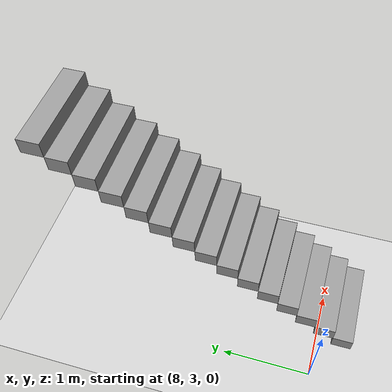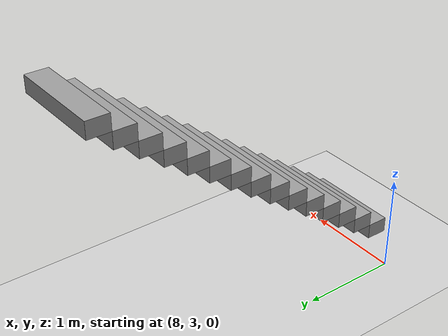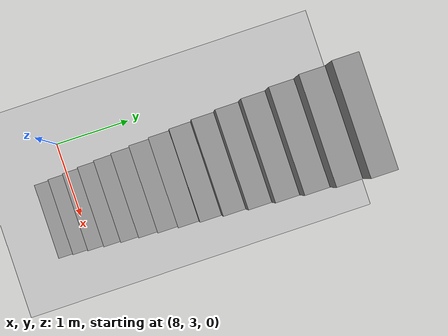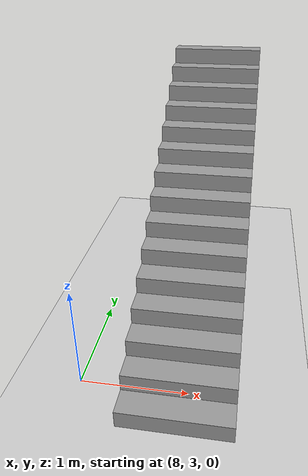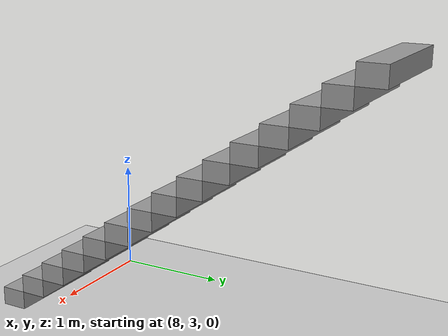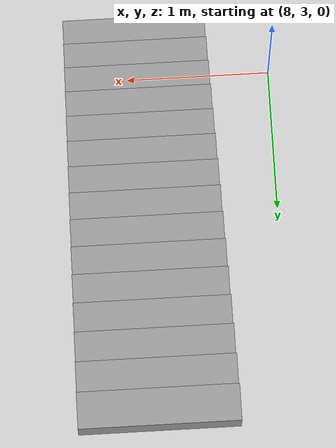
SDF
<sdf version="1.6">
 <world name="default">
  <model name="ground_plane">
   <static>1</static>
   <link name="link">
    <collision name="collision">
     <geometry><plane><normal>0 0 1</normal><size>100 100</size></plane></geometry>
     <surface><friction><ode><mu>100</mu><mu2>50</mu2></ode></friction></surface>
    </collision>
    <visual name="visual">
     <cast_shadows>0</cast_shadows>
     <geometry><plane><normal>0 0 1</normal><size>100 100</size></plane></geometry>
     <material>
      <script><uri>file://media/materials/scripts/gazebo.material</uri><name>Gazebo/Grey</name></script>
     </material>
    </visual>
   </link>
  </model>
  <model name="Building">
   <link name="Stairs_0">
    <visual name="Stairs_0_Visual_0">
     <pose>7.53348 2.95514 0.083333 0 0 -3.14159</pose>
     <geometry><box><size>1 0.231704 0.166667</size></box></geometry>
     <material>
      <script><uri>file://media/materials/scripts/gazebo.material</uri><name>Gazebo/Grey</name></script>
      <ambient>1 1 1 1</ambient>
      <shader type="pixel"/>
      <diffuse>0.7 0.7 0.7 1</diffuse>
      <specular>0.01 0.01 0.01 1</specular>
      <emissive>0 0 0 1</emissive>
     </material>
     <meta><layer>0</layer></meta>
    </visual>
    <visual name="Stairs_0_Visual_1">
     <pose>7.53348 3.18685 0.25 0 0 -3.14159</pose>
     <geometry><box><size>1 0.231704 0.166667</size></box></geometry>
     <material>
      <script><uri>file://media/materials/scripts/gazebo.material</uri><name>Gazebo/Grey</name></script>
      <ambient>1 1 1 1</ambient>
      <shader type="pixel"/>
      <diffuse>0.7 0.7 0.7 1</diffuse>
      <specular>0.01 0.01 0.01 1</specular>
      <emissive>0 0 0 1</emissive>
     </material>
     <meta><layer>0</layer></meta>
    </visual>
    <visual name="Stairs_0_Visual_2">
     <pose>7.53348 3.41855 0.416667 0 0 -3.14159</pose>
     <geometry><box><size>1 0.231704 0.166667</size></box></geometry>
     <material>
      <script><uri>file://media/materials/scripts/gazebo.material</uri><name>Gazebo/Grey</name></script>
      <ambient>1 1 1 1</ambient>
      <shader type="pixel"/>
      <diffuse>0.7 0.7 0.7 1</diffuse>
      <specular>0.01 0.01 0.01 1</specular>
      <emissive>0 0 0 1</emissive>
     </material>
     <meta><layer>0</layer></meta>
    </visual>
    <visual name="Stairs_0_Visual_3">
     <pose>7.53348 3.65026 0.583333 0 0 -3.14159</pose>
     <geometry><box><size>1 0.231704 0.166667</size></box></geometry>
     <material>
      <script><uri>file://media/materials/scripts/gazebo.material</uri><name>Gazebo/Grey</name></script>
      <ambient>1 1 1 1</ambient>
      <shader type="pixel"/>
      <diffuse>0.7 0.7 0.7 1</diffuse>
      <specular>0.01 0.01 0.01 1</specular>
      <emissive>0 0 0 1</emissive>
     </material>
     <meta><layer>0</layer></meta>
    </visual>
    <visual name="Stairs_0_Visual_4">
     <pose>7.53348 3.88196 0.75 0 0 -3.14159</pose>
     <geometry><box><size>1 0.231704 0.166667</size></box></geometry>
     <material>
      <script><uri>file://media/materials/scripts/gazebo.material</uri><name>Gazebo/Grey</name></script>
      <ambient>1 1 1 1</ambient>
      <shader type="pixel"/>
      <diffuse>0.7 0.7 0.7 1</diffuse>
      <specular>0.01 0.01 0.01 1</specular>
      <emissive>0 0 0 1</emissive>
     </material>
     <meta><layer>0</layer></meta>
    </visual>
    <visual name="Stairs_0_Visual_5">
     <pose>7.53348 4.11367 0.916667 0 0 -3.14159</pose>
     <geometry><box><size>1 0.231704 0.166667</size></box></geometry>
     <material>
      <script><uri>file://media/materials/scripts/gazebo.material</uri><name>Gazebo/Grey</name></script>
      <ambient>1 1 1 1</ambient>
      <shader type="pixel"/>
      <diffuse>0.7 0.7 0.7 1</diffuse>
      <specular>0.01 0.01 0.01 1</specular>
      <emissive>0 0 0 1</emissive>
     </material>
     <meta><layer>0</layer></meta>
    </visual>
    <visual name="Stairs_0_Visual_6">
     <pose>7.53348 4.34537 1.08333 0 0 -3.14159</pose>
     <geometry><box><size>1 0.231704 0.166667</size></box></geometry>
     <material>
      <script><uri>file://media/materials/scripts/gazebo.material</uri><name>Gazebo/Grey</name></script>
      <ambient>1 1 1 1</ambient>
      <shader type="pixel"/>
      <diffuse>0.7 0.7 0.7 1</diffuse>
      <specular>0.01 0.01 0.01 1</specular>
      <emissive>0 0 0 1</emissive>
     </material>
     <meta><layer>0</layer></meta>
    </visual>
    <visual name="Stairs_0_Visual_7">
     <pose>7.53348 4.57708 1.25 0 0 -3.14159</pose>
     <geometry><box><size>1 0.231704 0.166667</size></box></geometry>
     <material>
      <script><uri>file://media/materials/scripts/gazebo.material</uri><name>Gazebo/Grey</name></script>
      <ambient>1 1 1 1</ambient>
      <shader type="pixel"/>
      <diffuse>0.7 0.7 0.7 1</diffuse>
      <specular>0.01 0.01 0.01 1</specular>
      <emissive>0 0 0 1</emissive>
     </material>
     <meta><layer>0</layer></meta>
    </visual>
    <visual name="Stairs_0_Visual_8">
     <pose>7.53348 4.80878 1.41667 0 0 -3.14159</pose>
     <geometry><box><size>1 0.231704 0.166667</size></box></geometry>
     <material>
      <script><uri>file://media/materials/scripts/gazebo.material</uri><name>Gazebo/Grey</name></script>
      <ambient>1 1 1 1</ambient>
      <shader type="pixel"/>
      <diffuse>0.7 0.7 0.7 1</diffuse>
      <specular>0.01 0.01 0.01 1</specular>
      <emissive>0 0 0 1</emissive>
     </material>
     <meta><layer>0</layer></meta>
    </visual>
    <visual name="Stairs_0_Visual_9">
     <pose>7.53348 5.04049 1.58333 0 0 -3.14159</pose>
     <geometry><box><size>1 0.231704 0.166667</size></box></geometry>
     <material>
      <script><uri>file://media/materials/scripts/gazebo.material</uri><name>Gazebo/Grey</name></script>
      <ambient>1 1 1 1</ambient>
      <shader type="pixel"/>
      <diffuse>0.7 0.7 0.7 1</diffuse>
      <specular>0.01 0.01 0.01 1</specular>
      <emissive>0 0 0 1</emissive>
     </material>
     <meta><layer>0</layer></meta>
    </visual>
    <visual name="Stairs_0_Visual_10">
     <pose>7.53348 5.27219 1.75 0 0 -3.14159</pose>
     <geometry><box><size>1 0.231704 0.166667</size></box></geometry>
     <material>
      <script><uri>file://media/materials/scripts/gazebo.material</uri><name>Gazebo/Grey</name></script>
      <ambient>1 1 1 1</ambient>
      <shader type="pixel"/>
      <diffuse>0.7 0.7 0.7 1</diffuse>
      <specular>0.01 0.01 0.01 1</specular>
      <emissive>0 0 0 1</emissive>
     </material>
     <meta><layer>0</layer></meta>
    </visual>
    <visual name="Stairs_0_Visual_11">
     <pose>7.53348 5.50389 1.91667 0 0 -3.14159</pose>
     <geometry><box><size>1 0.231704 0.166667</size></box></geometry>
     <material>
      <script><uri>file://media/materials/scripts/gazebo.material</uri><name>Gazebo/Grey</name></script>
      <ambient>1 1 1 1</ambient>
      <shader type="pixel"/>
      <diffuse>0.7 0.7 0.7 1</diffuse>
      <specular>0.01 0.01 0.01 1</specular>
      <emissive>0 0 0 1</emissive>
     </material>
     <meta><layer>0</layer></meta>
    </visual>
    <visual name="Stairs_0_Visual_12">
     <pose>7.53348 5.7356 2.08333 0 0 -3.14159</pose>
     <geometry><box><size>1 0.231704 0.166667</size></box></geometry>
     <material>
      <script><uri>file://media/materials/scripts/gazebo.material</uri><name>Gazebo/Grey</name></script>
      <ambient>1 1 1 1</ambient>
      <shader type="pixel"/>
      <diffuse>0.7 0.7 0.7 1</diffuse>
      <specular>0.01 0.01 0.01 1</specular>
      <emissive>0 0 0 1</emissive>
     </material>
     <meta><layer>0</layer></meta>
    </visual>
    <visual name="Stairs_0_Visual_13">
     <pose>7.53348 5.9673 2.25 0 0 -3.14159</pose>
     <geometry><box><size>1 0.231704 0.166667</size></box></geometry>
     <material>
      <script><uri>file://media/materials/scripts/gazebo.material</uri><name>Gazebo/Grey</name></script>
      <ambient>1 1 1 1</ambient>
      <shader type="pixel"/>
      <diffuse>0.7 0.7 0.7 1</diffuse>
      <specular>0.01 0.01 0.01 1</specular>
      <emissive>0 0 0 1</emissive>
     </material>
     <meta><layer>0</layer></meta>
    </visual>
    <visual name="Stairs_0_Visual_14">
     <pose>7.53348 6.19901 2.41667 0 0 -3.14159</pose>
     <geometry><box><size>1 0.231704 0.166667</size></box></geometry>
     <material>
      <script><uri>file://media/materials/scripts/gazebo.material</uri><name>Gazebo/Grey</name></script>
      <ambient>1 1 1 1</ambient>
      <shader type="pixel"/>
      <diffuse>0.7 0.7 0.7 1</diffuse>
      <specular>0.01 0.01 0.01 1</specular>
      <emissive>0 0 0 1</emissive>
     </material>
     <meta><layer>0</layer></meta>
    </visual>
    <collision name="Stairs_0_Collision_6">
     <pose>7.53348 4.34537 1.08333 0 0 -3.14159</pose>
     <geometry><box><size>1 0.231704 0.166667</size></box></geometry>
     <surface>
      <friction>
       <ode><mu>1</mu><mu2>1</mu2><fdir1>0 0 0</fdir1><slip1>0</slip1><slip2>0</slip2></ode>
       <torsional>
        <coefficient>1</coefficient>
        <patch_radius>0</patch_radius>
        <surface_radius>0</surface_radius>
        <use_patch_radius>1</use_patch_radius>
        <ode><slip>0</slip></ode>
       </torsional>
      </friction>
      <bounce><restitution_coefficient>0</restitution_coefficient><threshold>1e+06</threshold></bounce>
      <contact>
       <collide_without_contact>0</collide_without_contact>
       <collide_without_contact_bitmask>1</collide_without_contact_bitmask>
       <collide_bitmask>1</collide_bitmask>
       <ode>
        <soft_cfm>0</soft_cfm>
        <soft_erp>0.2</soft_erp>
        <kp>1e+13</kp>
        <kd>1</kd>
        <max_vel>0.01</max_vel>
        <min_depth>0</min_depth>
       </ode>
       <bullet>
        <split_impulse>1</split_impulse>
        <split_impulse_penetration_threshold>-0.01</split_impulse_penetration_threshold>
        <soft_cfm>0</soft_cfm>
        <soft_erp>0.2</soft_erp>
        <kp>1e+13</kp>
        <kd>1</kd>
       </bullet>
      </contact>
     </surface>
    </collision>
    <collision name="Stairs_0_Collision_0">
     <pose>7.53348 2.95514 0.083333 0 0 -3.14159</pose>
     <geometry><box><size>1 0.231704 0.166667</size></box></geometry>
     <surface>
      <friction>
       <ode><mu>1</mu><mu2>1</mu2><fdir1>0 0 0</fdir1><slip1>0</slip1><slip2>0</slip2></ode>
       <torsional>
        <coefficient>1</coefficient>
        <patch_radius>0</patch_radius>
        <surface_radius>0</surface_radius>
        <use_patch_radius>1</use_patch_radius>
        <ode><slip>0</slip></ode>
       </torsional>
      </friction>
      <bounce><restitution_coefficient>0</restitution_coefficient><threshold>1e+06</threshold></bounce>
      <contact>
       <collide_without_contact>0</collide_without_contact>
       <collide_without_contact_bitmask>1</collide_without_contact_bitmask>
       <collide_bitmask>1</collide_bitmask>
       <ode>
        <soft_cfm>0</soft_cfm>
        <soft_erp>0.2</soft_erp>
        <kp>1e+13</kp>
        <kd>1</kd>
        <max_vel>0.01</max_vel>
        <min_depth>0</min_depth>
       </ode>
       <bullet>
        <split_impulse>1</split_impulse>
        <split_impulse_penetration_threshold>-0.01</split_impulse_penetration_threshold>
        <soft_cfm>0</soft_cfm>
        <soft_erp>0.2</soft_erp>
        <kp>1e+13</kp>
        <kd>1</kd>
       </bullet>
      </contact>
     </surface>
    </collision>
    <collision name="Stairs_0_Collision_2">
     <pose>7.53348 3.41855 0.416667 0 0 -3.14159</pose>
     <geometry><box><size>1 0.231704 0.166667</size></box></geometry>
     <surface>
      <friction>
       <ode><mu>1</mu><mu2>1</mu2><fdir1>0 0 0</fdir1><slip1>0</slip1><slip2>0</slip2></ode>
       <torsional>
        <coefficient>1</coefficient>
        <patch_radius>0</patch_radius>
        <surface_radius>0</surface_radius>
        <use_patch_radius>1</use_patch_radius>
        <ode><slip>0</slip></ode>
       </torsional>
      </friction>
      <bounce><restitution_coefficient>0</restitution_coefficient><threshold>1e+06</threshold></bounce>
      <contact>
       <collide_without_contact>0</collide_without_contact>
       <collide_without_contact_bitmask>1</collide_without_contact_bitmask>
       <collide_bitmask>1</collide_bitmask>
       <ode>
        <soft_cfm>0</soft_cfm>
        <soft_erp>0.2</soft_erp>
        <kp>1e+13</kp>
        <kd>1</kd>
        <max_vel>0.01</max_vel>
        <min_depth>0</min_depth>
       </ode>
       <bullet>
        <split_impulse>1</split_impulse>
        <split_impulse_penetration_threshold>-0.01</split_impulse_penetration_threshold>
        <soft_cfm>0</soft_cfm>
        <soft_erp>0.2</soft_erp>
        <kp>1e+13</kp>
        <kd>1</kd>
       </bullet>
      </contact>
     </surface>
    </collision>
    <collision name="Stairs_0_Collision_1">
     <pose>7.53348 3.18685 0.25 0 0 -3.14159</pose>
     <geometry><box><size>1 0.231704 0.166667</size></box></geometry>
     <surface>
      <friction>
       <ode><mu>1</mu><mu2>1</mu2><fdir1>0 0 0</fdir1><slip1>0</slip1><slip2>0</slip2></ode>
       <torsional>
        <coefficient>1</coefficient>
        <patch_radius>0</patch_radius>
        <surface_radius>0</surface_radius>
        <use_patch_radius>1</use_patch_radius>
        <ode><slip>0</slip></ode>
       </torsional>
      </friction>
      <bounce><restitution_coefficient>0</restitution_coefficient><threshold>1e+06</threshold></bounce>
      <contact>
       <collide_without_contact>0</collide_without_contact>
       <collide_without_contact_bitmask>1</collide_without_contact_bitmask>
       <collide_bitmask>1</collide_bitmask>
       <ode>
        <soft_cfm>0</soft_cfm>
        <soft_erp>0.2</soft_erp>
        <kp>1e+13</kp>
        <kd>1</kd>
        <max_vel>0.01</max_vel>
        <min_depth>0</min_depth>
       </ode>
       <bullet>
        <split_impulse>1</split_impulse>
        <split_impulse_penetration_threshold>-0.01</split_impulse_penetration_threshold>
        <soft_cfm>0</soft_cfm>
        <soft_erp>0.2</soft_erp>
        <kp>1e+13</kp>
        <kd>1</kd>
       </bullet>
      </contact>
     </surface>
    </collision>
    <collision name="Stairs_0_Collision_4">
     <pose>7.53348 3.88196 0.75 0 0 -3.14159</pose>
     <geometry><box><size>1 0.231704 0.166667</size></box></geometry>
     <surface>
      <friction>
       <ode><mu>1</mu><mu2>1</mu2><fdir1>0 0 0</fdir1><slip1>0</slip1><slip2>0</slip2></ode>
       <torsional>
        <coefficient>1</coefficient>
        <patch_radius>0</patch_radius>
        <surface_radius>0</surface_radius>
        <use_patch_radius>1</use_patch_radius>
        <ode><slip>0</slip></ode>
       </torsional>
      </friction>
      <bounce><restitution_coefficient>0</restitution_coefficient><threshold>1e+06</threshold></bounce>
      <contact>
       <collide_without_contact>0</collide_without_contact>
       <collide_without_contact_bitmask>1</collide_without_contact_bitmask>
       <collide_bitmask>1</collide_bitmask>
       <ode>
        <soft_cfm>0</soft_cfm>
        <soft_erp>0.2</soft_erp>
        <kp>1e+13</kp>
        <kd>1</kd>
        <max_vel>0.01</max_vel>
        <min_depth>0</min_depth>
       </ode>
       <bullet>
        <split_impulse>1</split_impulse>
        <split_impulse_penetration_threshold>-0.01</split_impulse_penetration_threshold>
        <soft_cfm>0</soft_cfm>
        <soft_erp>0.2</soft_erp>
        <kp>1e+13</kp>
        <kd>1</kd>
       </bullet>
      </contact>
     </surface>
    </collision>
    <collision name="Stairs_0_Collision_3">
     <pose>7.53348 3.65026 0.583333 0 0 -3.14159</pose>
     <geometry><box><size>1 0.231704 0.166667</size></box></geometry>
     <surface>
      <friction>
       <ode><mu>1</mu><mu2>1</mu2><fdir1>0 0 0</fdir1><slip1>0</slip1><slip2>0</slip2></ode>
       <torsional>
        <coefficient>1</coefficient>
        <patch_radius>0</patch_radius>
        <surface_radius>0</surface_radius>
        <use_patch_radius>1</use_patch_radius>
        <ode><slip>0</slip></ode>
       </torsional>
      </friction>
      <bounce><restitution_coefficient>0</restitution_coefficient><threshold>1e+06</threshold></bounce>
      <contact>
       <collide_without_contact>0</collide_without_contact>
       <collide_without_contact_bitmask>1</collide_without_contact_bitmask>
       <collide_bitmask>1</collide_bitmask>
       <ode>
        <soft_cfm>0</soft_cfm>
        <soft_erp>0.2</soft_erp>
        <kp>1e+13</kp>
        <kd>1</kd>
        <max_vel>0.01</max_vel>
        <min_depth>0</min_depth>
       </ode>
       <bullet>
        <split_impulse>1</split_impulse>
        <split_impulse_penetration_threshold>-0.01</split_impulse_penetration_threshold>
        <soft_cfm>0</soft_cfm>
        <soft_erp>0.2</soft_erp>
        <kp>1e+13</kp>
        <kd>1</kd>
       </bullet>
      </contact>
     </surface>
    </collision>
    <collision name="Stairs_0_Collision_5">
     <pose>7.53348 4.11367 0.916667 0 0 -3.14159</pose>
     <geometry><box><size>1 0.231704 0.166667</size></box></geometry>
     <surface>
      <friction>
       <ode><mu>1</mu><mu2>1</mu2><fdir1>0 0 0</fdir1><slip1>0</slip1><slip2>0</slip2></ode>
       <torsional>
        <coefficient>1</coefficient>
        <patch_radius>0</patch_radius>
        <surface_radius>0</surface_radius>
        <use_patch_radius>1</use_patch_radius>
        <ode><slip>0</slip></ode>
       </torsional>
      </friction>
      <bounce><restitution_coefficient>0</restitution_coefficient><threshold>1e+06</threshold></bounce>
      <contact>
       <collide_without_contact>0</collide_without_contact>
       <collide_without_contact_bitmask>1</collide_without_contact_bitmask>
       <collide_bitmask>1</collide_bitmask>
       <ode>
        <soft_cfm>0</soft_cfm>
        <soft_erp>0.2</soft_erp>
        <kp>1e+13</kp>
        <kd>1</kd>
        <max_vel>0.01</max_vel>
        <min_depth>0</min_depth>
       </ode>
       <bullet>
        <split_impulse>1</split_impulse>
        <split_impulse_penetration_threshold>-0.01</split_impulse_penetration_threshold>
        <soft_cfm>0</soft_cfm>
        <soft_erp>0.2</soft_erp>
        <kp>1e+13</kp>
        <kd>1</kd>
       </bullet>
      </contact>
     </surface>
    </collision>
    <collision name="Stairs_0_Collision_8">
     <pose>7.53348 4.80878 1.41667 0 0 -3.14159</pose>
     <geometry><box><size>1 0.231704 0.166667</size></box></geometry>
     <surface>
      <friction>
       <ode><mu>1</mu><mu2>1</mu2><fdir1>0 0 0</fdir1><slip1>0</slip1><slip2>0</slip2></ode>
       <torsional>
        <coefficient>1</coefficient>
        <patch_radius>0</patch_radius>
        <surface_radius>0</surface_radius>
        <use_patch_radius>1</use_patch_radius>
        <ode><slip>0</slip></ode>
       </torsional>
      </friction>
      <bounce><restitution_coefficient>0</restitution_coefficient><threshold>1e+06</threshold></bounce>
      <contact>
       <collide_without_contact>0</collide_without_contact>
       <collide_without_contact_bitmask>1</collide_without_contact_bitmask>
       <collide_bitmask>1</collide_bitmask>
       <ode>
        <soft_cfm>0</soft_cfm>
        <soft_erp>0.2</soft_erp>
        <kp>1e+13</kp>
        <kd>1</kd>
        <max_vel>0.01</max_vel>
        <min_depth>0</min_depth>
       </ode>
       <bullet>
        <split_impulse>1</split_impulse>
        <split_impulse_penetration_threshold>-0.01</split_impulse_penetration_threshold>
        <soft_cfm>0</soft_cfm>
        <soft_erp>0.2</soft_erp>
        <kp>1e+13</kp>
        <kd>1</kd>
       </bullet>
      </contact>
     </surface>
    </collision>
    <collision name="Stairs_0_Collision_7">
     <pose>7.53348 4.57708 1.25 0 0 -3.14159</pose>
     <geometry><box><size>1 0.231704 0.166667</size></box></geometry>
     <surface>
      <friction>
       <ode><mu>1</mu><mu2>1</mu2><fdir1>0 0 0</fdir1><slip1>0</slip1><slip2>0</slip2></ode>
       <torsional>
        <coefficient>1</coefficient>
        <patch_radius>0</patch_radius>
        <surface_radius>0</surface_radius>
        <use_patch_radius>1</use_patch_radius>
        <ode><slip>0</slip></ode>
       </torsional>
      </friction>
      <bounce><restitution_coefficient>0</restitution_coefficient><threshold>1e+06</threshold></bounce>
      <contact>
       <collide_without_contact>0</collide_without_contact>
       <collide_without_contact_bitmask>1</collide_without_contact_bitmask>
       <collide_bitmask>1</collide_bitmask>
       <ode>
        <soft_cfm>0</soft_cfm>
        <soft_erp>0.2</soft_erp>
        <kp>1e+13</kp>
        <kd>1</kd>
        <max_vel>0.01</max_vel>
        <min_depth>0</min_depth>
       </ode>
       <bullet>
        <split_impulse>1</split_impulse>
        <split_impulse_penetration_threshold>-0.01</split_impulse_penetration_threshold>
        <soft_cfm>0</soft_cfm>
        <soft_erp>0.2</soft_erp>
        <kp>1e+13</kp>
        <kd>1</kd>
       </bullet>
      </contact>
     </surface>
    </collision>
    <collision name="Stairs_0_Collision_9">
     <pose>7.53348 5.04049 1.58333 0 0 -3.14159</pose>
     <geometry><box><size>1 0.231704 0.166667</size></box></geometry>
     <surface>
      <friction>
       <ode><mu>1</mu><mu2>1</mu2><fdir1>0 0 0</fdir1><slip1>0</slip1><slip2>0</slip2></ode>
       <torsional>
        <coefficient>1</coefficient>
        <patch_radius>0</patch_radius>
        <surface_radius>0</surface_radius>
        <use_patch_radius>1</use_patch_radius>
        <ode><slip>0</slip></ode>
       </torsional>
      </friction>
      <bounce><restitution_coefficient>0</restitution_coefficient><threshold>1e+06</threshold></bounce>
      <contact>
       <collide_without_contact>0</collide_without_contact>
       <collide_without_contact_bitmask>1</collide_without_contact_bitmask>
       <collide_bitmask>1</collide_bitmask>
       <ode>
        <soft_cfm>0</soft_cfm>
        <soft_erp>0.2</soft_erp>
        <kp>1e+13</kp>
        <kd>1</kd>
        <max_vel>0.01</max_vel>
        <min_depth>0</min_depth>
       </ode>
       <bullet>
        <split_impulse>1</split_impulse>
        <split_impulse_penetration_threshold>-0.01</split_impulse_penetration_threshold>
        <soft_cfm>0</soft_cfm>
        <soft_erp>0.2</soft_erp>
        <kp>1e+13</kp>
        <kd>1</kd>
       </bullet>
      </contact>
     </surface>
    </collision>
    <collision name="Stairs_0_Collision_10">
     <pose>7.53348 5.27219 1.75 0 0 -3.14159</pose>
     <geometry><box><size>1 0.231704 0.166667</size></box></geometry>
     <surface>
      <friction>
       <ode><mu>1</mu><mu2>1</mu2><fdir1>0 0 0</fdir1><slip1>0</slip1><slip2>0</slip2></ode>
       <torsional>
        <coefficient>1</coefficient>
        <patch_radius>0</patch_radius>
        <surface_radius>0</surface_radius>
        <use_patch_radius>1</use_patch_radius>
        <ode><slip>0</slip></ode>
       </torsional>
      </friction>
      <bounce><restitution_coefficient>0</restitution_coefficient><threshold>1e+06</threshold></bounce>
      <contact>
       <collide_without_contact>0</collide_without_contact>
       <collide_without_contact_bitmask>1</collide_without_contact_bitmask>
       <collide_bitmask>1</collide_bitmask>
       <ode>
        <soft_cfm>0</soft_cfm>
        <soft_erp>0.2</soft_erp>
        <kp>1e+13</kp>
        <kd>1</kd>
        <max_vel>0.01</max_vel>
        <min_depth>0</min_depth>
       </ode>
       <bullet>
        <split_impulse>1</split_impulse>
        <split_impulse_penetration_threshold>-0.01</split_impulse_penetration_threshold>
        <soft_cfm>0</soft_cfm>
        <soft_erp>0.2</soft_erp>
        <kp>1e+13</kp>
        <kd>1</kd>
       </bullet>
      </contact>
     </surface>
    </collision>
    <collision name="Stairs_0_Collision_11">
     <pose>7.53348 5.50389 1.91667 0 0 -3.14159</pose>
     <geometry><box><size>1 0.231704 0.166667</size></box></geometry>
     <surface>
      <friction>
       <ode><mu>1</mu><mu2>1</mu2><fdir1>0 0 0</fdir1><slip1>0</slip1><slip2>0</slip2></ode>
       <torsional>
        <coefficient>1</coefficient>
        <patch_radius>0</patch_radius>
        <surface_radius>0</surface_radius>
        <use_patch_radius>1</use_patch_radius>
        <ode><slip>0</slip></ode>
       </torsional>
      </friction>
      <bounce><restitution_coefficient>0</restitution_coefficient><threshold>1e+06</threshold></bounce>
      <contact>
       <collide_without_contact>0</collide_without_contact>
       <collide_without_contact_bitmask>1</collide_without_contact_bitmask>
       <collide_bitmask>1</collide_bitmask>
       <ode>
        <soft_cfm>0</soft_cfm>
        <soft_erp>0.2</soft_erp>
        <kp>1e+13</kp>
        <kd>1</kd>
        <max_vel>0.01</max_vel>
        <min_depth>0</min_depth>
       </ode>
       <bullet>
        <split_impulse>1</split_impulse>
        <split_impulse_penetration_threshold>-0.01</split_impulse_penetration_threshold>
        <soft_cfm>0</soft_cfm>
        <soft_erp>0.2</soft_erp>
        <kp>1e+13</kp>
        <kd>1</kd>
       </bullet>
      </contact>
     </surface>
    </collision>
    <collision name="Stairs_0_Collision_12">
     <pose>7.53348 5.7356 2.08333 0 0 -3.14159</pose>
     <geometry><box><size>1 0.231704 0.166667</size></box></geometry>
     <surface>
      <friction>
       <ode><mu>1</mu><mu2>1</mu2><fdir1>0 0 0</fdir1><slip1>0</slip1><slip2>0</slip2></ode>
       <torsional>
        <coefficient>1</coefficient>
        <patch_radius>0</patch_radius>
        <surface_radius>0</surface_radius>
        <use_patch_radius>1</use_patch_radius>
        <ode><slip>0</slip></ode>
       </torsional>
      </friction>
      <bounce><restitution_coefficient>0</restitution_coefficient><threshold>1e+06</threshold></bounce>
      <contact>
       <collide_without_contact>0</collide_without_contact>
       <collide_without_contact_bitmask>1</collide_without_contact_bitmask>
       <collide_bitmask>1</collide_bitmask>
       <ode>
        <soft_cfm>0</soft_cfm>
        <soft_erp>0.2</soft_erp>
        <kp>1e+13</kp>
        <kd>1</kd>
        <max_vel>0.01</max_vel>
        <min_depth>0</min_depth>
       </ode>
       <bullet>
        <split_impulse>1</split_impulse>
        <split_impulse_penetration_threshold>-0.01</split_impulse_penetration_threshold>
        <soft_cfm>0</soft_cfm>
        <soft_erp>0.2</soft_erp>
        <kp>1e+13</kp>
        <kd>1</kd>
       </bullet>
      </contact>
     </surface>
    </collision>
    <collision name="Stairs_0_Collision_14">
     <pose>7.53348 6.19901 2.41667 0 0 -3.14159</pose>
     <geometry><box><size>1 0.231704 0.166667</size></box></geometry>
     <surface>
      <friction>
       <ode><mu>1</mu><mu2>1</mu2><fdir1>0 0 0</fdir1><slip1>0</slip1><slip2>0</slip2></ode>
       <torsional>
        <coefficient>1</coefficient>
        <patch_radius>0</patch_radius>
        <surface_radius>0</surface_radius>
        <use_patch_radius>1</use_patch_radius>
        <ode><slip>0</slip></ode>
       </torsional>
      </friction>
      <bounce><restitution_coefficient>0</restitution_coefficient><threshold>1e+06</threshold></bounce>
      <contact>
       <collide_without_contact>0</collide_without_contact>
       <collide_without_contact_bitmask>1</collide_without_contact_bitmask>
       <collide_bitmask>1</collide_bitmask>
       <ode>
        <soft_cfm>0</soft_cfm>
        <soft_erp>0.2</soft_erp>
        <kp>1e+13</kp>
        <kd>1</kd>
        <max_vel>0.01</max_vel>
        <min_depth>0</min_depth>
       </ode>
       <bullet>
        <split_impulse>1</split_impulse>
        <split_impulse_penetration_threshold>-0.01</split_impulse_penetration_threshold>
        <soft_cfm>0</soft_cfm>
        <soft_erp>0.2</soft_erp>
        <kp>1e+13</kp>
        <kd>1</kd>
       </bullet>
      </contact>
     </surface>
    </collision>
    <collision name="Stairs_0_Collision_13">
     <pose>7.53348 5.9673 2.25 0 0 -3.14159</pose>
     <geometry><box><size>1 0.231704 0.166667</size></box></geometry>
     <surface>
      <friction>
       <ode><mu>1</mu><mu2>1</mu2><fdir1>0 0 0</fdir1><slip1>0</slip1><slip2>0</slip2></ode>
       <torsional>
        <coefficient>1</coefficient>
        <patch_radius>0</patch_radius>
        <surface_radius>0</surface_radius>
        <use_patch_radius>1</use_patch_radius>
        <ode><slip>0</slip></ode>
       </torsional>
      </friction>
      <bounce><restitution_coefficient>0</restitution_coefficient><threshold>1e+06</threshold></bounce>
      <contact>
       <collide_without_contact>0</collide_without_contact>
       <collide_without_contact_bitmask>1</collide_without_contact_bitmask>
       <collide_bitmask>1</collide_bitmask>
       <ode>
        <soft_cfm>0</soft_cfm>
        <soft_erp>0.2</soft_erp>
        <kp>1e+13</kp>
        <kd>1</kd>
        <max_vel>0.01</max_vel>
        <min_depth>0</min_depth>
       </ode>
       <bullet>
        <split_impulse>1</split_impulse>
        <split_impulse_penetration_threshold>-0.01</split_impulse_penetration_threshold>
        <soft_cfm>0</soft_cfm>
        <soft_erp>0.2</soft_erp>
        <kp>1e+13</kp>
        <kd>1</kd>
       </bullet>
      </contact>
     </surface>
    </collision>
   </link>
   <static>1</static>
   <pose>1.39929 -0.252215 0 0 -0 0</pose>
  </model>
 </world>
</sdf>
